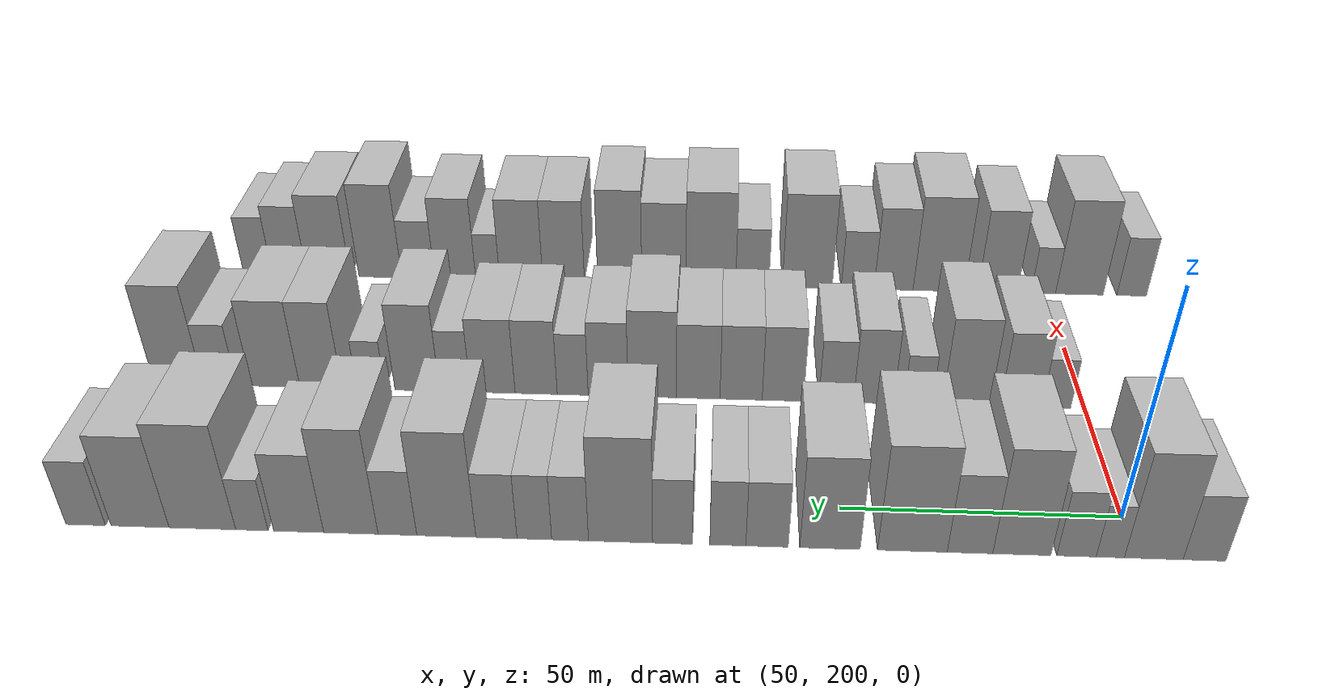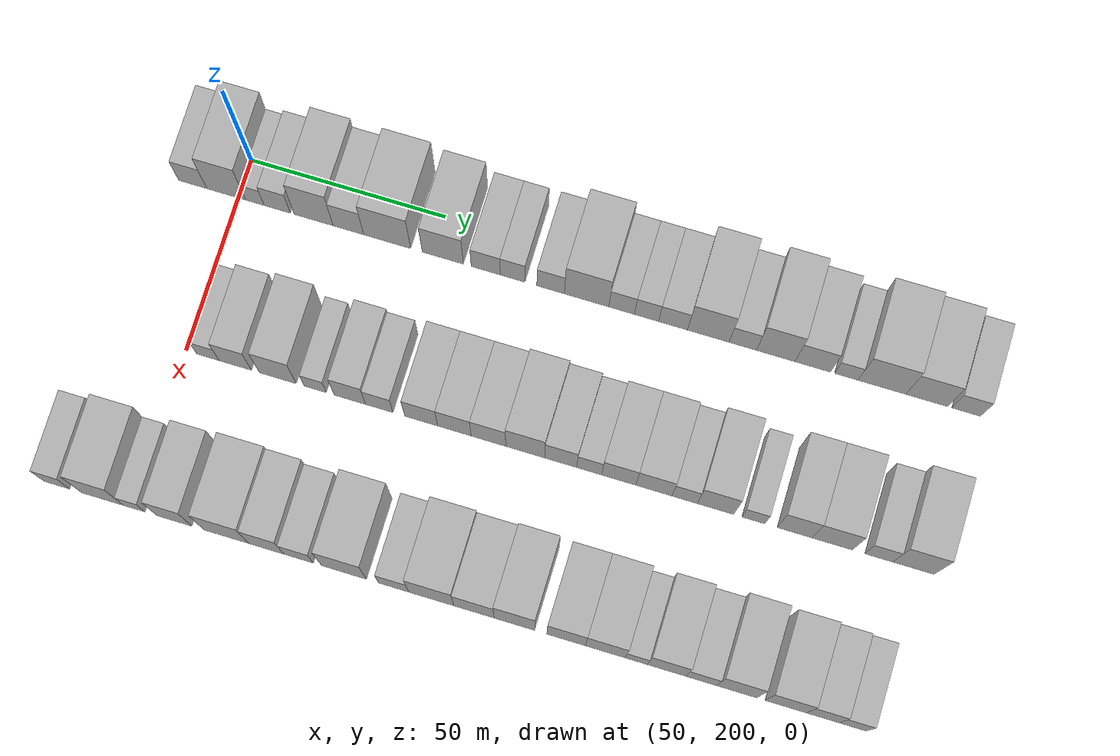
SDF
<sdf version="1.6">
 <world name="default">
  <model name="building_65">
   <static>1</static>
   <pose>50.0000 188.2694 0 0.000000 0.000000 0.000000</pose>
   <link name="link">
    <pose>0 0 7.50 0 0 0</pose>
    <collision name="collision"><geometry><box><size>20.0000 7.2713 15.0000</size></box></geometry></collision>
    <visual name="visual">
     <cast_shadows>0</cast_shadows>
     <geometry><box><size>20.0000 7.2713 15.0000</size></box></geometry>
     <material>
      <script>
       <uri>model://HANNAS_wall/materials/scripts</uri>
       <uri>model://HANNAS_wall/materials/textures</uri>
       <name>vrc/HANNAS_wall</name>
      </script>
     </material>
    </visual>
   </link>
  </model>
  <model name="building_66">
   <static>1</static>
   <pose>50.0000 196.8892 0 0.000000 0.000000 0.000000</pose>
   <link name="link">
    <pose>0 0 12.00 0 0 0</pose>
    <collision name="collision"><geometry><box><size>20.0000 9.9684 24.0000</size></box></geometry></collision>
    <visual name="visual">
     <cast_shadows>0</cast_shadows>
     <geometry><box><size>20.0000 9.9684 24.0000</size></box></geometry>
     <material>
      <script>
       <uri>model://HANNAS_wall/materials/scripts</uri>
       <uri>model://HANNAS_wall/materials/textures</uri>
       <name>vrc/HANNAS_wall</name>
      </script>
     </material>
    </visual>
   </link>
  </model>
  <model name="building_67">
   <static>1</static>
   <pose>50.0000 204.2798 0 0.000000 0.000000 0.000000</pose>
   <link name="link">
    <pose>0 0 6.00 0 0 0</pose>
    <collision name="collision"><geometry><box><size>20.0000 4.8129 12.0000</size></box></geometry></collision>
    <visual name="visual">
     <cast_shadows>0</cast_shadows>
     <geometry><box><size>20.0000 4.8129 12.0000</size></box></geometry>
     <material>
      <script>
       <uri>model://HANNAS_wall/materials/scripts</uri>
       <uri>model://HANNAS_wall/materials/textures</uri>
       <name>vrc/HANNAS_wall</name>
      </script>
     </material>
    </visual>
   </link>
  </model>
  <model name="building_68">
   <static>1</static>
   <pose>50.0000 210.0441 0 0.000000 0.000000 0.000000</pose>
   <link name="link">
    <pose>0 0 7.50 0 0 0</pose>
    <collision name="collision"><geometry><box><size>20.0000 6.7156 15.0000</size></box></geometry></collision>
    <visual name="visual">
     <cast_shadows>0</cast_shadows>
     <geometry><box><size>20.0000 6.7156 15.0000</size></box></geometry>
     <material>
      <script>
       <uri>model://HANNAS_wall/materials/scripts</uri>
       <uri>model://HANNAS_wall/materials/textures</uri>
       <name>vrc/HANNAS_wall</name>
      </script>
     </material>
    </visual>
   </link>
  </model>
  <model name="building_69">
   <static>1</static>
   <pose>50.0000 219.3858 0 0.000000 0.000000 0.000000</pose>
   <link name="link">
    <pose>0 0 12.00 0 0 0</pose>
    <collision name="collision"><geometry><box><size>20.0000 9.9680 24.0000</size></box></geometry></collision>
    <visual name="visual">
     <cast_shadows>0</cast_shadows>
     <geometry><box><size>20.0000 9.9680 24.0000</size></box></geometry>
     <material>
      <script>
       <uri>model://HANNAS_wall/materials/scripts</uri>
       <uri>model://HANNAS_wall/materials/textures</uri>
       <name>vrc/HANNAS_wall</name>
      </script>
     </material>
    </visual>
   </link>
  </model>
  <model name="building_70">
   <static>1</static>
   <pose>50.0000 228.2781 0 0.000000 0.000000 0.000000</pose>
   <link name="link">
    <pose>0 0 9.00 0 0 0</pose>
    <collision name="collision"><geometry><box><size>20.0000 7.8165 18.0000</size></box></geometry></collision>
    <visual name="visual">
     <cast_shadows>0</cast_shadows>
     <geometry><box><size>20.0000 7.8165 18.0000</size></box></geometry>
     <material>
      <script>
       <uri>model://HANNAS_wall/materials/scripts</uri>
       <uri>model://HANNAS_wall/materials/textures</uri>
       <name>vrc/HANNAS_wall</name>
      </script>
     </material>
    </visual>
   </link>
  </model>
  <model name="building_71">
   <static>1</static>
   <pose>50.0000 238.1825 0 0.000000 0.000000 0.000000</pose>
   <link name="link">
    <pose>0 0 12.00 0 0 0</pose>
    <collision name="collision"><geometry><box><size>20.0000 11.9923 24.0000</size></box></geometry></collision>
    <visual name="visual">
     <cast_shadows>0</cast_shadows>
     <geometry><box><size>20.0000 11.9923 24.0000</size></box></geometry>
     <material>
      <script>
       <uri>model://HANNAS_wall/materials/scripts</uri>
       <uri>model://HANNAS_wall/materials/textures</uri>
       <name>vrc/HANNAS_wall</name>
      </script>
     </material>
    </visual>
   </link>
  </model>
  <model name="building_72">
   <static>1</static>
   <pose>50.0000 252.4010 0 0.000000 0.000000 0.000000</pose>
   <link name="link">
    <pose>0 0 10.50 0 0 0</pose>
    <collision name="collision"><geometry><box><size>20.0000 10.4447 21.0000</size></box></geometry></collision>
    <visual name="visual">
     <cast_shadows>0</cast_shadows>
     <geometry><box><size>20.0000 10.4447 21.0000</size></box></geometry>
     <material>
      <script>
       <uri>model://HANNAS_wall/materials/scripts</uri>
       <uri>model://HANNAS_wall/materials/textures</uri>
       <name>vrc/HANNAS_wall</name>
      </script>
     </material>
    </visual>
   </link>
  </model>
  <model name="building_73">
   <static>1</static>
   <pose>50.0000 263.3073 0 0.000000 0.000000 0.000000</pose>
   <link name="link">
    <pose>0 0 7.50 0 0 0</pose>
    <collision name="collision"><geometry><box><size>20.0000 7.3680 15.0000</size></box></geometry></collision>
    <visual name="visual">
     <cast_shadows>0</cast_shadows>
     <geometry><box><size>20.0000 7.3680 15.0000</size></box></geometry>
     <material>
      <script>
       <uri>model://HANNAS_wall/materials/scripts</uri>
       <uri>model://HANNAS_wall/materials/textures</uri>
       <name>vrc/HANNAS_wall</name>
      </script>
     </material>
    </visual>
   </link>
  </model>
  <model name="building_74">
   <static>1</static>
   <pose>50.0000 270.1238 0 0.000000 0.000000 0.000000</pose>
   <link name="link">
    <pose>0 0 7.50 0 0 0</pose>
    <collision name="collision"><geometry><box><size>20.0000 6.2649 15.0000</size></box></geometry></collision>
    <visual name="visual">
     <cast_shadows>0</cast_shadows>
     <geometry><box><size>20.0000 6.2649 15.0000</size></box></geometry>
     <material>
      <script>
       <uri>model://HANNAS_wall/materials/scripts</uri>
       <uri>model://HANNAS_wall/materials/textures</uri>
       <name>vrc/HANNAS_wall</name>
      </script>
     </material>
    </visual>
   </link>
  </model>
  <model name="building_75">
   <static>1</static>
   <pose>50.0000 279.7421 0 0.000000 0.000000 0.000000</pose>
   <link name="link">
    <pose>0 0 7.50 0 0 0</pose>
    <collision name="collision"><geometry><box><size>20.0000 6.9716 15.0000</size></box></geometry></collision>
    <visual name="visual">
     <cast_shadows>0</cast_shadows>
     <geometry><box><size>20.0000 6.9716 15.0000</size></box></geometry>
     <material>
      <script>
       <uri>model://HANNAS_wall/materials/scripts</uri>
       <uri>model://HANNAS_wall/materials/textures</uri>
       <name>vrc/HANNAS_wall</name>
      </script>
     </material>
    </visual>
   </link>
  </model>
  <model name="building_76">
   <static>1</static>
   <pose>50.0000 288.8369 0 0.000000 0.000000 0.000000</pose>
   <link name="link">
    <pose>0 0 12.00 0 0 0</pose>
    <collision name="collision"><geometry><box><size>20.0000 11.2180 24.0000</size></box></geometry></collision>
    <visual name="visual">
     <cast_shadows>0</cast_shadows>
     <geometry><box><size>20.0000 11.2180 24.0000</size></box></geometry>
     <material>
      <script>
       <uri>model://HANNAS_wall/materials/scripts</uri>
       <uri>model://HANNAS_wall/materials/textures</uri>
       <name>vrc/HANNAS_wall</name>
      </script>
     </material>
    </visual>
   </link>
  </model>
  <model name="building_77">
   <static>1</static>
   <pose>50.0000 297.6691 0 0.000000 0.000000 0.000000</pose>
   <link name="link">
    <pose>0 0 7.50 0 0 0</pose>
    <collision name="collision"><geometry><box><size>20.0000 6.4464 15.0000</size></box></geometry></collision>
    <visual name="visual">
     <cast_shadows>0</cast_shadows>
     <geometry><box><size>20.0000 6.4464 15.0000</size></box></geometry>
     <material>
      <script>
       <uri>model://HANNAS_wall/materials/scripts</uri>
       <uri>model://HANNAS_wall/materials/textures</uri>
       <name>vrc/HANNAS_wall</name>
      </script>
     </material>
    </visual>
   </link>
  </model>
  <model name="building_78">
   <static>1</static>
   <pose>50.0000 303.9396 0 0.000000 0.000000 0.000000</pose>
   <link name="link">
    <pose>0 0 7.50 0 0 0</pose>
    <collision name="collision"><geometry><box><size>20.0000 6.0945 15.0000</size></box></geometry></collision>
    <visual name="visual">
     <cast_shadows>0</cast_shadows>
     <geometry><box><size>20.0000 6.0945 15.0000</size></box></geometry>
     <material>
      <script>
       <uri>model://HANNAS_wall/materials/scripts</uri>
       <uri>model://HANNAS_wall/materials/textures</uri>
       <name>vrc/HANNAS_wall</name>
      </script>
     </material>
    </visual>
   </link>
  </model>
  <model name="building_79">
   <static>1</static>
   <pose>50.0000 310.6081 0 0.000000 0.000000 0.000000</pose>
   <link name="link">
    <pose>0 0 7.50 0 0 0</pose>
    <collision name="collision"><geometry><box><size>20.0000 7.2426 15.0000</size></box></geometry></collision>
    <visual name="visual">
     <cast_shadows>0</cast_shadows>
     <geometry><box><size>20.0000 7.2426 15.0000</size></box></geometry>
     <material>
      <script>
       <uri>model://HANNAS_wall/materials/scripts</uri>
       <uri>model://HANNAS_wall/materials/textures</uri>
       <name>vrc/HANNAS_wall</name>
      </script>
     </material>
    </visual>
   </link>
  </model>
  <model name="building_80">
   <static>1</static>
   <pose>50.0000 319.4443 0 0.000000 0.000000 0.000000</pose>
   <link name="link">
    <pose>0 0 12.00 0 0 0</pose>
    <collision name="collision"><geometry><box><size>20.0000 10.4298 24.0000</size></box></geometry></collision>
    <visual name="visual">
     <cast_shadows>0</cast_shadows>
     <geometry><box><size>20.0000 10.4298 24.0000</size></box></geometry>
     <material>
      <script>
       <uri>model://HANNAS_wall/materials/scripts</uri>
       <uri>model://HANNAS_wall/materials/textures</uri>
       <name>vrc/HANNAS_wall</name>
      </script>
     </material>
    </visual>
   </link>
  </model>
  <model name="building_81">
   <static>1</static>
   <pose>50.0000 328.0904 0 0.000000 0.000000 0.000000</pose>
   <link name="link">
    <pose>0 0 7.50 0 0 0</pose>
    <collision name="collision"><geometry><box><size>20.0000 6.8624 15.0000</size></box></geometry></collision>
    <visual name="visual">
     <cast_shadows>0</cast_shadows>
     <geometry><box><size>20.0000 6.8624 15.0000</size></box></geometry>
     <material>
      <script>
       <uri>model://HANNAS_wall/materials/scripts</uri>
       <uri>model://HANNAS_wall/materials/textures</uri>
       <name>vrc/HANNAS_wall</name>
      </script>
     </material>
    </visual>
   </link>
  </model>
  <model name="building_82">
   <static>1</static>
   <pose>50.0000 336.3529 0 0.000000 0.000000 0.000000</pose>
   <link name="link">
    <pose>0 0 12.00 0 0 0</pose>
    <collision name="collision"><geometry><box><size>20.0000 9.6626 24.0000</size></box></geometry></collision>
    <visual name="visual">
     <cast_shadows>0</cast_shadows>
     <geometry><box><size>20.0000 9.6626 24.0000</size></box></geometry>
     <material>
      <script>
       <uri>model://HANNAS_wall/materials/scripts</uri>
       <uri>model://HANNAS_wall/materials/textures</uri>
       <name>vrc/HANNAS_wall</name>
      </script>
     </material>
    </visual>
   </link>
  </model>
  <model name="building_83">
   <static>1</static>
   <pose>50.0000 345.6388 0 0.000000 0.000000 0.000000</pose>
   <link name="link">
    <pose>0 0 9.00 0 0 0</pose>
    <collision name="collision"><geometry><box><size>20.0000 8.9091 18.0000</size></box></geometry></collision>
    <visual name="visual">
     <cast_shadows>0</cast_shadows>
     <geometry><box><size>20.0000 8.9091 18.0000</size></box></geometry>
     <material>
      <script>
       <uri>model://HANNAS_wall/materials/scripts</uri>
       <uri>model://HANNAS_wall/materials/textures</uri>
       <name>vrc/HANNAS_wall</name>
      </script>
     </material>
    </visual>
   </link>
  </model>
  <model name="building_84">
   <static>1</static>
   <pose>50.0000 353.9823 0 0.000000 0.000000 0.000000</pose>
   <link name="link">
    <pose>0 0 6.00 0 0 0</pose>
    <collision name="collision"><geometry><box><size>20.0000 5.7779 12.0000</size></box></geometry></collision>
    <visual name="visual">
     <cast_shadows>0</cast_shadows>
     <geometry><box><size>20.0000 5.7779 12.0000</size></box></geometry>
     <material>
      <script>
       <uri>model://HANNAS_wall/materials/scripts</uri>
       <uri>model://HANNAS_wall/materials/textures</uri>
       <name>vrc/HANNAS_wall</name>
      </script>
     </material>
    </visual>
   </link>
  </model>
  <model name="building_85">
   <static>1</static>
   <pose>50.0000 362.8342 0 0.000000 0.000000 0.000000</pose>
   <link name="link">
    <pose>0 0 12.00 0 0 0</pose>
    <collision name="collision"><geometry><box><size>20.0000 11.9259 24.0000</size></box></geometry></collision>
    <visual name="visual">
     <cast_shadows>0</cast_shadows>
     <geometry><box><size>20.0000 11.9259 24.0000</size></box></geometry>
     <material>
      <script>
       <uri>model://HANNAS_wall/materials/scripts</uri>
       <uri>model://HANNAS_wall/materials/textures</uri>
       <name>vrc/HANNAS_wall</name>
      </script>
     </material>
    </visual>
   </link>
  </model>
  <model name="building_86">
   <static>1</static>
   <pose>50.0000 374.0132 0 0.000000 0.000000 0.000000</pose>
   <link name="link">
    <pose>0 0 10.50 0 0 0</pose>
    <collision name="collision"><geometry><box><size>20.0000 10.4321 21.0000</size></box></geometry></collision>
    <visual name="visual">
     <cast_shadows>0</cast_shadows>
     <geometry><box><size>20.0000 10.4321 21.0000</size></box></geometry>
     <material>
      <script>
       <uri>model://HANNAS_wall/materials/scripts</uri>
       <uri>model://HANNAS_wall/materials/textures</uri>
       <name>vrc/HANNAS_wall</name>
      </script>
     </material>
    </visual>
   </link>
  </model>
  <model name="building_87">
   <static>1</static>
   <pose>50.0000 383.7852 0 0.000000 0.000000 0.000000</pose>
   <link name="link">
    <pose>0 0 7.50 0 0 0</pose>
    <collision name="collision"><geometry><box><size>20.0000 7.1118 15.0000</size></box></geometry></collision>
    <visual name="visual">
     <cast_shadows>0</cast_shadows>
     <geometry><box><size>20.0000 7.1118 15.0000</size></box></geometry>
     <material>
      <script>
       <uri>model://HANNAS_wall/materials/scripts</uri>
       <uri>model://HANNAS_wall/materials/textures</uri>
       <name>vrc/HANNAS_wall</name>
      </script>
     </material>
    </visual>
   </link>
  </model>
  <model name="building_153">
   <static>1</static>
   <pose>90.0000 205.6087 0 0.000000 0.000000 0.000000</pose>
   <link name="link">
    <pose>0 0 6.00 0 0 0</pose>
    <collision name="collision"><geometry><box><size>20.0000 5.6764 12.0000</size></box></geometry></collision>
    <visual name="visual">
     <cast_shadows>0</cast_shadows>
     <geometry><box><size>20.0000 5.6764 12.0000</size></box></geometry>
     <material>
      <script>
       <uri>model://HANNAS_wall/materials/scripts</uri>
       <uri>model://HANNAS_wall/materials/textures</uri>
       <name>vrc/HANNAS_wall</name>
      </script>
     </material>
    </visual>
   </link>
  </model>
  <model name="building_154">
   <static>1</static>
   <pose>90.0000 212.5434 0 0.000000 0.000000 0.000000</pose>
   <link name="link">
    <pose>0 0 9.00 0 0 0</pose>
    <collision name="collision"><geometry><box><size>20.0000 8.1929 18.0000</size></box></geometry></collision>
    <visual name="visual">
     <cast_shadows>0</cast_shadows>
     <geometry><box><size>20.0000 8.1929 18.0000</size></box></geometry>
     <material>
      <script>
       <uri>model://HANNAS_wall/materials/scripts</uri>
       <uri>model://HANNAS_wall/materials/textures</uri>
       <name>vrc/HANNAS_wall</name>
      </script>
     </material>
    </visual>
   </link>
  </model>
  <model name="building_155">
   <static>1</static>
   <pose>90.0000 223.2906 0 0.000000 0.000000 0.000000</pose>
   <link name="link">
    <pose>0 0 10.50 0 0 0</pose>
    <collision name="collision"><geometry><box><size>20.0000 9.3016 21.0000</size></box></geometry></collision>
    <visual name="visual">
     <cast_shadows>0</cast_shadows>
     <geometry><box><size>20.0000 9.3016 21.0000</size></box></geometry>
     <material>
      <script>
       <uri>model://HANNAS_wall/materials/scripts</uri>
       <uri>model://HANNAS_wall/materials/textures</uri>
       <name>vrc/HANNAS_wall</name>
      </script>
     </material>
    </visual>
   </link>
  </model>
  <model name="building_156">
   <static>1</static>
   <pose>90.0000 232.7520 0 0.000000 0.000000 0.000000</pose>
   <link name="link">
    <pose>0 0 6.00 0 0 0</pose>
    <collision name="collision"><geometry><box><size>20.0000 5.6211 12.0000</size></box></geometry></collision>
    <visual name="visual">
     <cast_shadows>0</cast_shadows>
     <geometry><box><size>20.0000 5.6211 12.0000</size></box></geometry>
     <material>
      <script>
       <uri>model://HANNAS_wall/materials/scripts</uri>
       <uri>model://HANNAS_wall/materials/textures</uri>
       <name>vrc/HANNAS_wall</name>
      </script>
     </material>
    </visual>
   </link>
  </model>
  <model name="building_157">
   <static>1</static>
   <pose>90.0000 241.5173 0 0.000000 0.000000 0.000000</pose>
   <link name="link">
    <pose>0 0 9.00 0 0 0</pose>
    <collision name="collision"><geometry><box><size>20.0000 7.9096 18.0000</size></box></geometry></collision>
    <visual name="visual">
     <cast_shadows>0</cast_shadows>
     <geometry><box><size>20.0000 7.9096 18.0000</size></box></geometry>
     <material>
      <script>
       <uri>model://HANNAS_wall/materials/scripts</uri>
       <uri>model://HANNAS_wall/materials/textures</uri>
       <name>vrc/HANNAS_wall</name>
      </script>
     </material>
    </visual>
   </link>
  </model>
  <model name="building_158">
   <static>1</static>
   <pose>90.0000 248.9060 0 0.000000 0.000000 0.000000</pose>
   <link name="link">
    <pose>0 0 7.50 0 0 0</pose>
    <collision name="collision"><geometry><box><size>20.0000 6.8679 15.0000</size></box></geometry></collision>
    <visual name="visual">
     <cast_shadows>0</cast_shadows>
     <geometry><box><size>20.0000 6.8679 15.0000</size></box></geometry>
     <material>
      <script>
       <uri>model://HANNAS_wall/materials/scripts</uri>
       <uri>model://HANNAS_wall/materials/textures</uri>
       <name>vrc/HANNAS_wall</name>
      </script>
     </material>
    </visual>
   </link>
  </model>
  <model name="building_159">
   <static>1</static>
   <pose>90.0000 259.4456 0 0.000000 0.000000 0.000000</pose>
   <link name="link">
    <pose>0 0 9.00 0 0 0</pose>
    <collision name="collision"><geometry><box><size>20.0000 8.2114 18.0000</size></box></geometry></collision>
    <visual name="visual">
     <cast_shadows>0</cast_shadows>
     <geometry><box><size>20.0000 8.2114 18.0000</size></box></geometry>
     <material>
      <script>
       <uri>model://HANNAS_wall/materials/scripts</uri>
       <uri>model://HANNAS_wall/materials/textures</uri>
       <name>vrc/HANNAS_wall</name>
      </script>
     </material>
    </visual>
   </link>
  </model>
  <model name="building_160">
   <static>1</static>
   <pose>90.0000 267.7454 0 0.000000 0.000000 0.000000</pose>
   <link name="link">
    <pose>0 0 9.00 0 0 0</pose>
    <collision name="collision"><geometry><box><size>20.0000 8.3880 18.0000</size></box></geometry></collision>
    <visual name="visual">
     <cast_shadows>0</cast_shadows>
     <geometry><box><size>20.0000 8.3880 18.0000</size></box></geometry>
     <material>
      <script>
       <uri>model://HANNAS_wall/materials/scripts</uri>
       <uri>model://HANNAS_wall/materials/textures</uri>
       <name>vrc/HANNAS_wall</name>
      </script>
     </material>
    </visual>
   </link>
  </model>
  <model name="building_161">
   <static>1</static>
   <pose>90.0000 276.2699 0 0.000000 0.000000 0.000000</pose>
   <link name="link">
    <pose>0 0 9.00 0 0 0</pose>
    <collision name="collision"><geometry><box><size>20.0000 8.6611 18.0000</size></box></geometry></collision>
    <visual name="visual">
     <cast_shadows>0</cast_shadows>
     <geometry><box><size>20.0000 8.6611 18.0000</size></box></geometry>
     <material>
      <script>
       <uri>model://HANNAS_wall/materials/scripts</uri>
       <uri>model://HANNAS_wall/materials/textures</uri>
       <name>vrc/HANNAS_wall</name>
      </script>
     </material>
    </visual>
   </link>
  </model>
  <model name="building_162">
   <static>1</static>
   <pose>90.0000 285.4371 0 0.000000 0.000000 0.000000</pose>
   <link name="link">
    <pose>0 0 10.50 0 0 0</pose>
    <collision name="collision"><geometry><box><size>20.0000 9.6733 21.0000</size></box></geometry></collision>
    <visual name="visual">
     <cast_shadows>0</cast_shadows>
     <geometry><box><size>20.0000 9.6733 21.0000</size></box></geometry>
     <material>
      <script>
       <uri>model://HANNAS_wall/materials/scripts</uri>
       <uri>model://HANNAS_wall/materials/textures</uri>
       <name>vrc/HANNAS_wall</name>
      </script>
     </material>
    </visual>
   </link>
  </model>
  <model name="building_163">
   <static>1</static>
   <pose>90.0000 294.2683 0 0.000000 0.000000 0.000000</pose>
   <link name="link">
    <pose>0 0 9.00 0 0 0</pose>
    <collision name="collision"><geometry><box><size>20.0000 7.9890 18.0000</size></box></geometry></collision>
    <visual name="visual">
     <cast_shadows>0</cast_shadows>
     <geometry><box><size>20.0000 7.9890 18.0000</size></box></geometry>
     <material>
      <script>
       <uri>model://HANNAS_wall/materials/scripts</uri>
       <uri>model://HANNAS_wall/materials/textures</uri>
       <name>vrc/HANNAS_wall</name>
      </script>
     </material>
    </visual>
   </link>
  </model>
  <model name="building_164">
   <static>1</static>
   <pose>90.0000 301.3690 0 0.000000 0.000000 0.000000</pose>
   <link name="link">
    <pose>0 0 7.50 0 0 0</pose>
    <collision name="collision"><geometry><box><size>20.0000 6.2124 15.0000</size></box></geometry></collision>
    <visual name="visual">
     <cast_shadows>0</cast_shadows>
     <geometry><box><size>20.0000 6.2124 15.0000</size></box></geometry>
     <material>
      <script>
       <uri>model://HANNAS_wall/materials/scripts</uri>
       <uri>model://HANNAS_wall/materials/textures</uri>
       <name>vrc/HANNAS_wall</name>
      </script>
     </material>
    </visual>
   </link>
  </model>
  <model name="building_165">
   <static>1</static>
   <pose>90.0000 308.7085 0 0.000000 0.000000 0.000000</pose>
   <link name="link">
    <pose>0 0 9.00 0 0 0</pose>
    <collision name="collision"><geometry><box><size>20.0000 8.4666 18.0000</size></box></geometry></collision>
    <visual name="visual">
     <cast_shadows>0</cast_shadows>
     <geometry><box><size>20.0000 8.4666 18.0000</size></box></geometry>
     <material>
      <script>
       <uri>model://HANNAS_wall/materials/scripts</uri>
       <uri>model://HANNAS_wall/materials/textures</uri>
       <name>vrc/HANNAS_wall</name>
      </script>
     </material>
    </visual>
   </link>
  </model>
  <model name="building_166">
   <static>1</static>
   <pose>90.0000 317.4226 0 0.000000 0.000000 0.000000</pose>
   <link name="link">
    <pose>0 0 9.00 0 0 0</pose>
    <collision name="collision"><geometry><box><size>20.0000 8.9617 18.0000</size></box></geometry></collision>
    <visual name="visual">
     <cast_shadows>0</cast_shadows>
     <geometry><box><size>20.0000 8.9617 18.0000</size></box></geometry>
     <material>
      <script>
       <uri>model://HANNAS_wall/materials/scripts</uri>
       <uri>model://HANNAS_wall/materials/textures</uri>
       <name>vrc/HANNAS_wall</name>
      </script>
     </material>
    </visual>
   </link>
  </model>
  <model name="building_167">
   <static>1</static>
   <pose>90.0000 325.0305 0 0.000000 0.000000 0.000000</pose>
   <link name="link">
    <pose>0 0 7.50 0 0 0</pose>
    <collision name="collision"><geometry><box><size>20.0000 6.2542 15.0000</size></box></geometry></collision>
    <visual name="visual">
     <cast_shadows>0</cast_shadows>
     <geometry><box><size>20.0000 6.2542 15.0000</size></box></geometry>
     <material>
      <script>
       <uri>model://HANNAS_wall/materials/scripts</uri>
       <uri>model://HANNAS_wall/materials/textures</uri>
       <name>vrc/HANNAS_wall</name>
      </script>
     </material>
    </visual>
   </link>
  </model>
  <model name="building_168">
   <static>1</static>
   <pose>90.0000 332.6797 0 0.000000 0.000000 0.000000</pose>
   <link name="link">
    <pose>0 0 10.50 0 0 0</pose>
    <collision name="collision"><geometry><box><size>20.0000 9.0441 21.0000</size></box></geometry></collision>
    <visual name="visual">
     <cast_shadows>0</cast_shadows>
     <geometry><box><size>20.0000 9.0441 21.0000</size></box></geometry>
     <material>
      <script>
       <uri>model://HANNAS_wall/materials/scripts</uri>
       <uri>model://HANNAS_wall/materials/textures</uri>
       <name>vrc/HANNAS_wall</name>
      </script>
     </material>
    </visual>
   </link>
  </model>
  <model name="building_169">
   <static>1</static>
   <pose>90.0000 342.0403 0 0.000000 0.000000 0.000000</pose>
   <link name="link">
    <pose>0 0 6.00 0 0 0</pose>
    <collision name="collision"><geometry><box><size>20.0000 5.6770 12.0000</size></box></geometry></collision>
    <visual name="visual">
     <cast_shadows>0</cast_shadows>
     <geometry><box><size>20.0000 5.6770 12.0000</size></box></geometry>
     <material>
      <script>
       <uri>model://HANNAS_wall/materials/scripts</uri>
       <uri>model://HANNAS_wall/materials/textures</uri>
       <name>vrc/HANNAS_wall</name>
      </script>
     </material>
    </visual>
   </link>
  </model>
  <model name="building_170">
   <static>1</static>
   <pose>90.0000 352.1912 0 0.000000 0.000000 0.000000</pose>
   <link name="link">
    <pose>0 0 10.50 0 0 0</pose>
    <collision name="collision"><geometry><box><size>20.0000 8.6248 21.0000</size></box></geometry></collision>
    <visual name="visual">
     <cast_shadows>0</cast_shadows>
     <geometry><box><size>20.0000 8.6248 21.0000</size></box></geometry>
     <material>
      <script>
       <uri>model://HANNAS_wall/materials/scripts</uri>
       <uri>model://HANNAS_wall/materials/textures</uri>
       <name>vrc/HANNAS_wall</name>
      </script>
     </material>
    </visual>
   </link>
  </model>
  <model name="building_171">
   <static>1</static>
   <pose>90.0000 361.4612 0 0.000000 0.000000 0.000000</pose>
   <link name="link">
    <pose>0 0 10.50 0 0 0</pose>
    <collision name="collision"><geometry><box><size>20.0000 9.9152 21.0000</size></box></geometry></collision>
    <visual name="visual">
     <cast_shadows>0</cast_shadows>
     <geometry><box><size>20.0000 9.9152 21.0000</size></box></geometry>
     <material>
      <script>
       <uri>model://HANNAS_wall/materials/scripts</uri>
       <uri>model://HANNAS_wall/materials/textures</uri>
       <name>vrc/HANNAS_wall</name>
      </script>
     </material>
    </visual>
   </link>
  </model>
  <model name="building_172">
   <static>1</static>
   <pose>90.0000 372.8431 0 0.000000 0.000000 0.000000</pose>
   <link name="link">
    <pose>0 0 7.50 0 0 0</pose>
    <collision name="collision"><geometry><box><size>20.0000 6.8488 15.0000</size></box></geometry></collision>
    <visual name="visual">
     <cast_shadows>0</cast_shadows>
     <geometry><box><size>20.0000 6.8488 15.0000</size></box></geometry>
     <material>
      <script>
       <uri>model://HANNAS_wall/materials/scripts</uri>
       <uri>model://HANNAS_wall/materials/textures</uri>
       <name>vrc/HANNAS_wall</name>
      </script>
     </material>
    </visual>
   </link>
  </model>
  <model name="building_173">
   <static>1</static>
   <pose>90.0000 381.3072 0 0.000000 0.000000 0.000000</pose>
   <link name="link">
    <pose>0 0 12.00 0 0 0</pose>
    <collision name="collision"><geometry><box><size>20.0000 10.0794 24.0000</size></box></geometry></collision>
    <visual name="visual">
     <cast_shadows>0</cast_shadows>
     <geometry><box><size>20.0000 10.0794 24.0000</size></box></geometry>
     <material>
      <script>
       <uri>model://HANNAS_wall/materials/scripts</uri>
       <uri>model://HANNAS_wall/materials/textures</uri>
       <name>vrc/HANNAS_wall</name>
      </script>
     </material>
    </visual>
   </link>
  </model>
  <model name="building_238">
   <static>1</static>
   <pose>130.0000 181.0945 0 0.000000 0.000000 0.000000</pose>
   <link name="link">
    <pose>0 0 7.50 0 0 0</pose>
    <collision name="collision"><geometry><box><size>20.0000 6.4978 15.0000</size></box></geometry></collision>
    <visual name="visual">
     <cast_shadows>0</cast_shadows>
     <geometry><box><size>20.0000 6.4978 15.0000</size></box></geometry>
     <material>
      <script>
       <uri>model://HANNAS_wall/materials/scripts</uri>
       <uri>model://HANNAS_wall/materials/textures</uri>
       <name>vrc/HANNAS_wall</name>
      </script>
     </material>
    </visual>
   </link>
  </model>
  <model name="building_239">
   <static>1</static>
   <pose>130.0000 192.5923 0 0.000000 0.000000 0.000000</pose>
   <link name="link">
    <pose>0 0 12.00 0 0 0</pose>
    <collision name="collision"><geometry><box><size>20.0000 10.4980 24.0000</size></box></geometry></collision>
    <visual name="visual">
     <cast_shadows>0</cast_shadows>
     <geometry><box><size>20.0000 10.4980 24.0000</size></box></geometry>
     <material>
      <script>
       <uri>model://HANNAS_wall/materials/scripts</uri>
       <uri>model://HANNAS_wall/materials/textures</uri>
       <name>vrc/HANNAS_wall</name>
      </script>
     </material>
    </visual>
   </link>
  </model>
  <model name="building_240">
   <static>1</static>
   <pose>130.0000 200.5427 0 0.000000 0.000000 0.000000</pose>
   <link name="link">
    <pose>0 0 6.00 0 0 0</pose>
    <collision name="collision"><geometry><box><size>20.0000 5.4027 12.0000</size></box></geometry></collision>
    <visual name="visual">
     <cast_shadows>0</cast_shadows>
     <geometry><box><size>20.0000 5.4027 12.0000</size></box></geometry>
     <material>
      <script>
       <uri>model://HANNAS_wall/materials/scripts</uri>
       <uri>model://HANNAS_wall/materials/textures</uri>
       <name>vrc/HANNAS_wall</name>
      </script>
     </material>
    </visual>
   </link>
  </model>
  <model name="building_241">
   <static>1</static>
   <pose>130.0000 210.6199 0 0.000000 0.000000 0.000000</pose>
   <link name="link">
    <pose>0 0 10.50 0 0 0</pose>
    <collision name="collision"><geometry><box><size>20.0000 8.7517 21.0000</size></box></geometry></collision>
    <visual name="visual">
     <cast_shadows>0</cast_shadows>
     <geometry><box><size>20.0000 8.7517 21.0000</size></box></geometry>
     <material>
      <script>
       <uri>model://HANNAS_wall/materials/scripts</uri>
       <uri>model://HANNAS_wall/materials/textures</uri>
       <name>vrc/HANNAS_wall</name>
      </script>
     </material>
    </visual>
   </link>
  </model>
  <model name="building_242">
   <static>1</static>
   <pose>130.0000 223.6696 0 0.000000 0.000000 0.000000</pose>
   <link name="link">
    <pose>0 0 12.00 0 0 0</pose>
    <collision name="collision"><geometry><box><size>20.0000 11.3479 24.0000</size></box></geometry></collision>
    <visual name="visual">
     <cast_shadows>0</cast_shadows>
     <geometry><box><size>20.0000 11.3479 24.0000</size></box></geometry>
     <material>
      <script>
       <uri>model://HANNAS_wall/materials/scripts</uri>
       <uri>model://HANNAS_wall/materials/textures</uri>
       <name>vrc/HANNAS_wall</name>
      </script>
     </material>
    </visual>
   </link>
  </model>
  <model name="building_243">
   <static>1</static>
   <pose>130.0000 233.6617 0 0.000000 0.000000 0.000000</pose>
   <link name="link">
    <pose>0 0 10.50 0 0 0</pose>
    <collision name="collision"><geometry><box><size>20.0000 8.6363 21.0000</size></box></geometry></collision>
    <visual name="visual">
     <cast_shadows>0</cast_shadows>
     <geometry><box><size>20.0000 8.6363 21.0000</size></box></geometry>
     <material>
      <script>
       <uri>model://HANNAS_wall/materials/scripts</uri>
       <uri>model://HANNAS_wall/materials/textures</uri>
       <name>vrc/HANNAS_wall</name>
      </script>
     </material>
    </visual>
   </link>
  </model>
  <model name="building_244">
   <static>1</static>
   <pose>130.0000 241.6461 0 0.000000 0.000000 0.000000</pose>
   <link name="link">
    <pose>0 0 7.50 0 0 0</pose>
    <collision name="collision"><geometry><box><size>20.0000 7.3326 15.0000</size></box></geometry></collision>
    <visual name="visual">
     <cast_shadows>0</cast_shadows>
     <geometry><box><size>20.0000 7.3326 15.0000</size></box></geometry>
     <material>
      <script>
       <uri>model://HANNAS_wall/materials/scripts</uri>
       <uri>model://HANNAS_wall/materials/textures</uri>
       <name>vrc/HANNAS_wall</name>
      </script>
     </material>
    </visual>
   </link>
  </model>
  <model name="building_245">
   <static>1</static>
   <pose>130.0000 252.8857 0 0.000000 0.000000 0.000000</pose>
   <link name="link">
    <pose>0 0 12.00 0 0 0</pose>
    <collision name="collision"><geometry><box><size>20.0000 11.1465 24.0000</size></box></geometry></collision>
    <visual name="visual">
     <cast_shadows>0</cast_shadows>
     <geometry><box><size>20.0000 11.1465 24.0000</size></box></geometry>
     <material>
      <script>
       <uri>model://HANNAS_wall/materials/scripts</uri>
       <uri>model://HANNAS_wall/materials/textures</uri>
       <name>vrc/HANNAS_wall</name>
      </script>
     </material>
    </visual>
   </link>
  </model>
  <model name="building_246">
   <static>1</static>
   <pose>130.0000 265.1702 0 0.000000 0.000000 0.000000</pose>
   <link name="link">
    <pose>0 0 7.50 0 0 0</pose>
    <collision name="collision"><geometry><box><size>20.0000 7.4227 15.0000</size></box></geometry></collision>
    <visual name="visual">
     <cast_shadows>0</cast_shadows>
     <geometry><box><size>20.0000 7.4227 15.0000</size></box></geometry>
     <material>
      <script>
       <uri>model://HANNAS_wall/materials/scripts</uri>
       <uri>model://HANNAS_wall/materials/textures</uri>
       <name>vrc/HANNAS_wall</name>
      </script>
     </material>
    </visual>
   </link>
  </model>
  <model name="building_247">
   <static>1</static>
   <pose>130.0000 274.4656 0 0.000000 0.000000 0.000000</pose>
   <link name="link">
    <pose>0 0 12.00 0 0 0</pose>
    <collision name="collision"><geometry><box><size>20.0000 11.1680 24.0000</size></box></geometry></collision>
    <visual name="visual">
     <cast_shadows>0</cast_shadows>
     <geometry><box><size>20.0000 11.1680 24.0000</size></box></geometry>
     <material>
      <script>
       <uri>model://HANNAS_wall/materials/scripts</uri>
       <uri>model://HANNAS_wall/materials/textures</uri>
       <name>vrc/HANNAS_wall</name>
      </script>
     </material>
    </visual>
   </link>
  </model>
  <model name="building_248">
   <static>1</static>
   <pose>130.0000 285.0008 0 0.000000 0.000000 0.000000</pose>
   <link name="link">
    <pose>0 0 10.50 0 0 0</pose>
    <collision name="collision"><geometry><box><size>20.0000 9.9024 21.0000</size></box></geometry></collision>
    <visual name="visual">
     <cast_shadows>0</cast_shadows>
     <geometry><box><size>20.0000 9.9024 21.0000</size></box></geometry>
     <material>
      <script>
       <uri>model://HANNAS_wall/materials/scripts</uri>
       <uri>model://HANNAS_wall/materials/textures</uri>
       <name>vrc/HANNAS_wall</name>
      </script>
     </material>
    </visual>
   </link>
  </model>
  <model name="building_249">
   <static>1</static>
   <pose>130.0000 294.9153 0 0.000000 0.000000 0.000000</pose>
   <link name="link">
    <pose>0 0 12.00 0 0 0</pose>
    <collision name="collision"><geometry><box><size>20.0000 9.9268 24.0000</size></box></geometry></collision>
    <visual name="visual">
     <cast_shadows>0</cast_shadows>
     <geometry><box><size>20.0000 9.9268 24.0000</size></box></geometry>
     <material>
      <script>
       <uri>model://HANNAS_wall/materials/scripts</uri>
       <uri>model://HANNAS_wall/materials/textures</uri>
       <name>vrc/HANNAS_wall</name>
      </script>
     </material>
    </visual>
   </link>
  </model>
  <model name="building_250">
   <static>1</static>
   <pose>130.0000 307.5869 0 0.000000 0.000000 0.000000</pose>
   <link name="link">
    <pose>0 0 10.50 0 0 0</pose>
    <collision name="collision"><geometry><box><size>20.0000 9.4163 21.0000</size></box></geometry></collision>
    <visual name="visual">
     <cast_shadows>0</cast_shadows>
     <geometry><box><size>20.0000 9.4163 21.0000</size></box></geometry>
     <material>
      <script>
       <uri>model://HANNAS_wall/materials/scripts</uri>
       <uri>model://HANNAS_wall/materials/textures</uri>
       <name>vrc/HANNAS_wall</name>
      </script>
     </material>
    </visual>
   </link>
  </model>
  <model name="building_251">
   <static>1</static>
   <pose>130.0000 317.1732 0 0.000000 0.000000 0.000000</pose>
   <link name="link">
    <pose>0 0 10.50 0 0 0</pose>
    <collision name="collision"><geometry><box><size>20.0000 9.7564 21.0000</size></box></geometry></collision>
    <visual name="visual">
     <cast_shadows>0</cast_shadows>
     <geometry><box><size>20.0000 9.7564 21.0000</size></box></geometry>
     <material>
      <script>
       <uri>model://HANNAS_wall/materials/scripts</uri>
       <uri>model://HANNAS_wall/materials/textures</uri>
       <name>vrc/HANNAS_wall</name>
      </script>
     </material>
    </visual>
   </link>
  </model>
  <model name="building_252">
   <static>1</static>
   <pose>130.0000 324.7699 0 0.000000 0.000000 0.000000</pose>
   <link name="link">
    <pose>0 0 6.00 0 0 0</pose>
    <collision name="collision"><geometry><box><size>20.0000 5.4369 12.0000</size></box></geometry></collision>
    <visual name="visual">
     <cast_shadows>0</cast_shadows>
     <geometry><box><size>20.0000 5.4369 12.0000</size></box></geometry>
     <material>
      <script>
       <uri>model://HANNAS_wall/materials/scripts</uri>
       <uri>model://HANNAS_wall/materials/textures</uri>
       <name>vrc/HANNAS_wall</name>
      </script>
     </material>
    </visual>
   </link>
  </model>
  <model name="building_253">
   <static>1</static>
   <pose>130.0000 332.1466 0 0.000000 0.000000 0.000000</pose>
   <link name="link">
    <pose>0 0 10.50 0 0 0</pose>
    <collision name="collision"><geometry><box><size>20.0000 9.3164 21.0000</size></box></geometry></collision>
    <visual name="visual">
     <cast_shadows>0</cast_shadows>
     <geometry><box><size>20.0000 9.3164 21.0000</size></box></geometry>
     <material>
      <script>
       <uri>model://HANNAS_wall/materials/scripts</uri>
       <uri>model://HANNAS_wall/materials/textures</uri>
       <name>vrc/HANNAS_wall</name>
      </script>
     </material>
    </visual>
   </link>
  </model>
  <model name="building_254">
   <static>1</static>
   <pose>130.0000 340.5546 0 0.000000 0.000000 0.000000</pose>
   <link name="link">
    <pose>0 0 7.50 0 0 0</pose>
    <collision name="collision"><geometry><box><size>20.0000 7.4997 15.0000</size></box></geometry></collision>
    <visual name="visual">
     <cast_shadows>0</cast_shadows>
     <geometry><box><size>20.0000 7.4997 15.0000</size></box></geometry>
     <material>
      <script>
       <uri>model://HANNAS_wall/materials/scripts</uri>
       <uri>model://HANNAS_wall/materials/textures</uri>
       <name>vrc/HANNAS_wall</name>
      </script>
     </material>
    </visual>
   </link>
  </model>
  <model name="building_255">
   <static>1</static>
   <pose>130.0000 349.1983 0 0.000000 0.000000 0.000000</pose>
   <link name="link">
    <pose>0 0 12.00 0 0 0</pose>
    <collision name="collision"><geometry><box><size>20.0000 9.7876 24.0000</size></box></geometry></collision>
    <visual name="visual">
     <cast_shadows>0</cast_shadows>
     <geometry><box><size>20.0000 9.7876 24.0000</size></box></geometry>
     <material>
      <script>
       <uri>model://HANNAS_wall/materials/scripts</uri>
       <uri>model://HANNAS_wall/materials/textures</uri>
       <name>vrc/HANNAS_wall</name>
      </script>
     </material>
    </visual>
   </link>
  </model>
  <model name="building_256">
   <static>1</static>
   <pose>130.0000 361.0590 0 0.000000 0.000000 0.000000</pose>
   <link name="link">
    <pose>0 0 10.50 0 0 0</pose>
    <collision name="collision"><geometry><box><size>20.0000 9.9338 21.0000</size></box></geometry></collision>
    <visual name="visual">
     <cast_shadows>0</cast_shadows>
     <geometry><box><size>20.0000 9.9338 21.0000</size></box></geometry>
     <material>
      <script>
       <uri>model://HANNAS_wall/materials/scripts</uri>
       <uri>model://HANNAS_wall/materials/textures</uri>
       <name>vrc/HANNAS_wall</name>
      </script>
     </material>
    </visual>
   </link>
  </model>
  <model name="building_257">
   <static>1</static>
   <pose>130.0000 369.9840 0 0.000000 0.000000 0.000000</pose>
   <link name="link">
    <pose>0 0 9.00 0 0 0</pose>
    <collision name="collision"><geometry><box><size>20.0000 7.9161 18.0000</size></box></geometry></collision>
    <visual name="visual">
     <cast_shadows>0</cast_shadows>
     <geometry><box><size>20.0000 7.9161 18.0000</size></box></geometry>
     <material>
      <script>
       <uri>model://HANNAS_wall/materials/scripts</uri>
       <uri>model://HANNAS_wall/materials/textures</uri>
       <name>vrc/HANNAS_wall</name>
      </script>
     </material>
    </visual>
   </link>
  </model>
  <model name="building_258">
   <static>1</static>
   <pose>130.0000 377.2397 0 0.000000 0.000000 0.000000</pose>
   <link name="link">
    <pose>0 0 7.50 0 0 0</pose>
    <collision name="collision"><geometry><box><size>20.0000 6.5954 15.0000</size></box></geometry></collision>
    <visual name="visual">
     <cast_shadows>0</cast_shadows>
     <geometry><box><size>20.0000 6.5954 15.0000</size></box></geometry>
     <material>
      <script>
       <uri>model://HANNAS_wall/materials/scripts</uri>
       <uri>model://HANNAS_wall/materials/textures</uri>
       <name>vrc/HANNAS_wall</name>
      </script>
     </material>
    </visual>
   </link>
  </model>
 </world>
</sdf>
